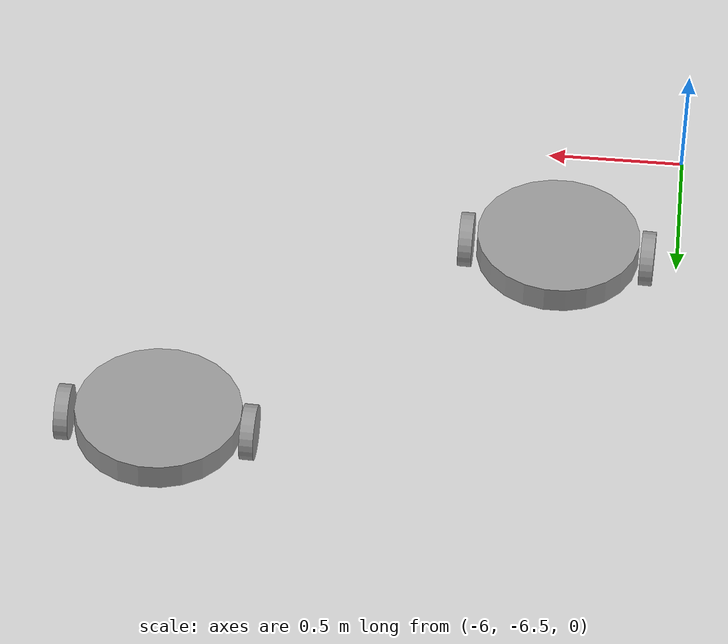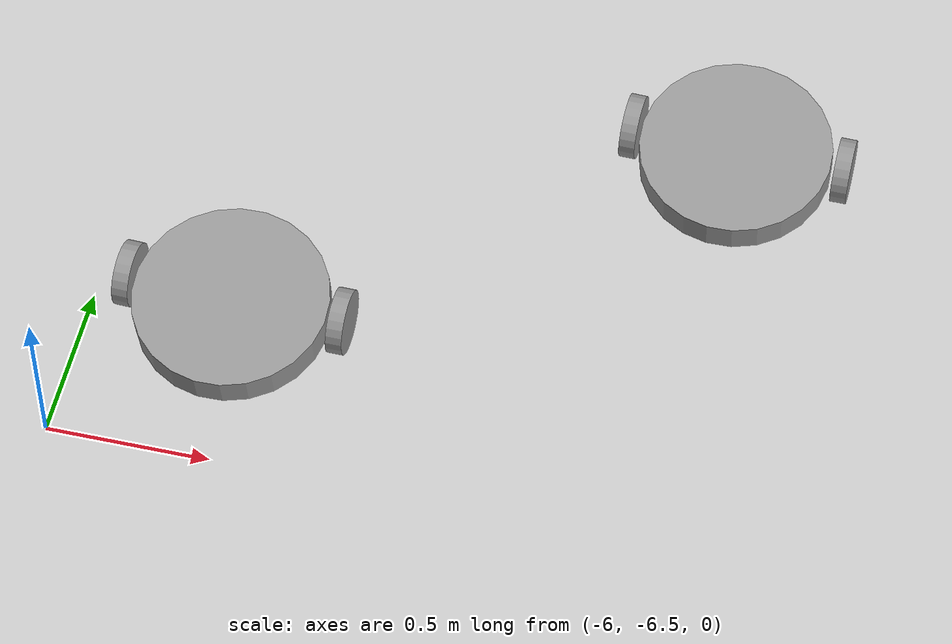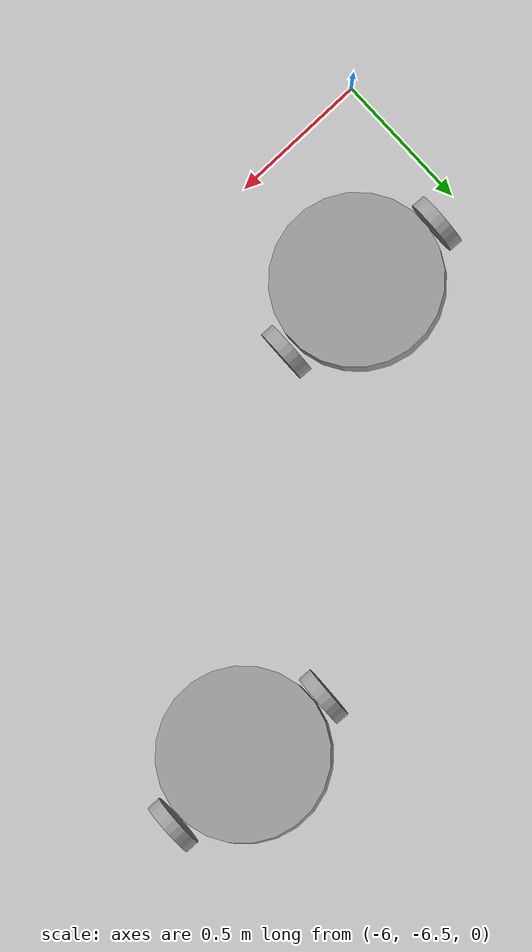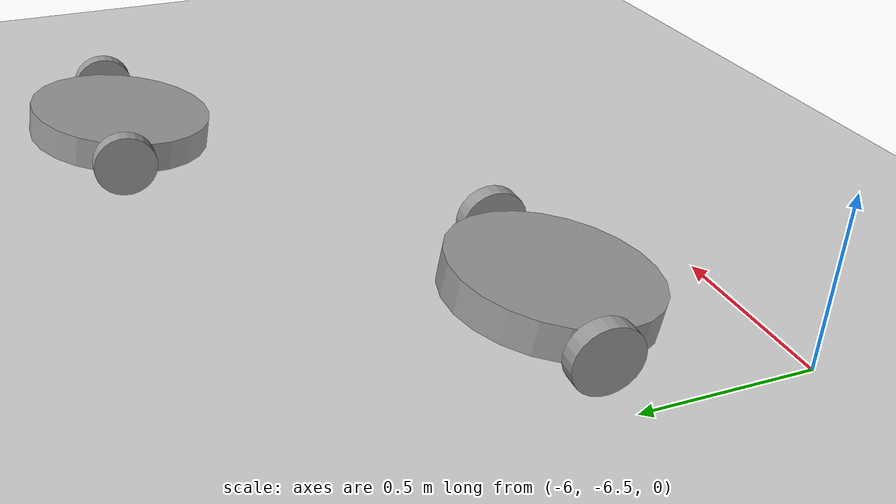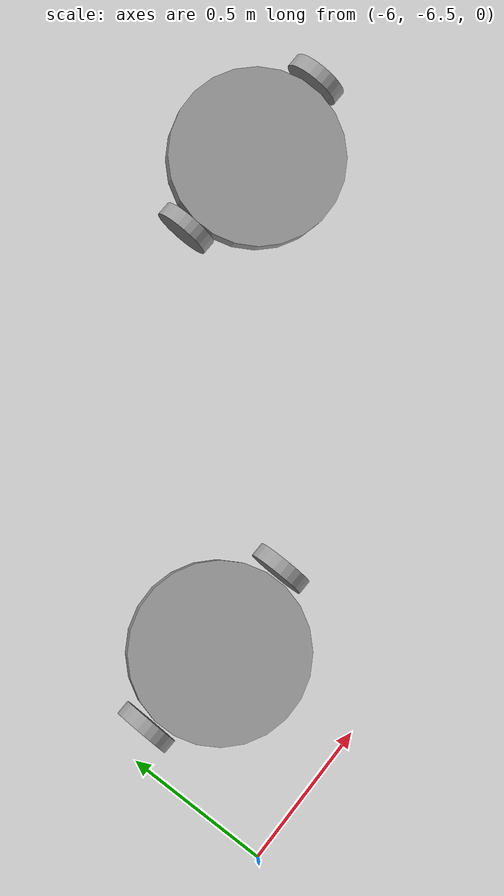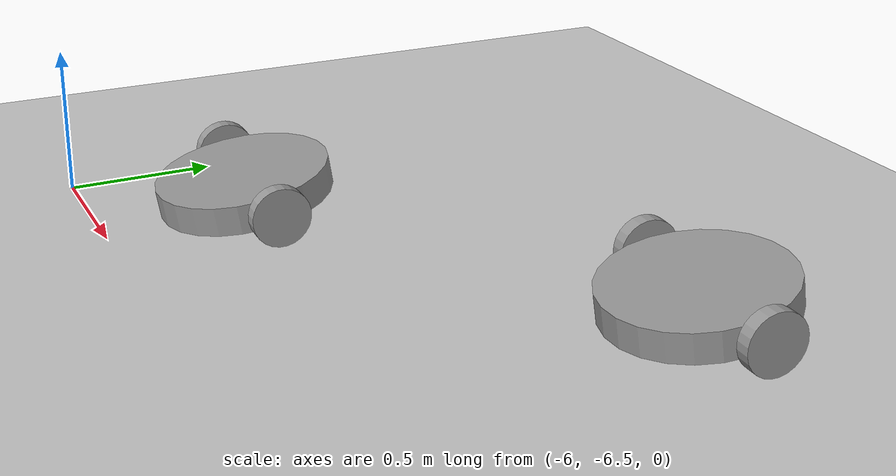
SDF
<sdf version="1.7">
 <world name="default">
  <model name="ground_plane">
   <static>1</static>
   <link name="link">
    <collision name="collision">
     <geometry><plane><normal>0 0 1</normal><size>100 100</size></plane></geometry>
     <surface>
      <contact><collide_bitmask>65535</collide_bitmask></contact>
      <friction><ode><mu>100</mu><mu2>50</mu2></ode></friction>
     </surface>
    </collision>
    <visual name="visual">
     <cast_shadows>0</cast_shadows>
     <geometry><plane><normal>0 0 1</normal><size>100 100</size></plane></geometry>
     <material>
      <script><uri>file://media/materials/scripts/gazebo.material</uri><name>Gazebo/Grey</name></script>
     </material>
    </visual>
   </link>
  </model>
  <model name="simple_robot">
   <link name="link_4_clone_clone">
    <inertial>
     <mass>1</mass>
     <inertia><ixx>0.145833</ixx><ixy>0</ixy><ixz>0</ixz><iyy>0.145833</iyy><iyz>0</iyz><izz>0.125</izz></inertia>
    </inertial>
    <pose>-0.050246 0.194522 0.073333 0 -0 0</pose>
    <visual name="visual">
     <geometry><cylinder><radius>0.3</radius><length>0.1</length></cylinder></geometry>
     <material>
      <lighting>1</lighting>
      <script><uri>file://media/materials/scripts/gazebo.material</uri><name>Gazebo/Grey</name></script>
      <shader type="pixel"><normal_map>__default__</normal_map></shader>
      <ambient>0.3 0.3 0.3 1</ambient>
      <diffuse>0.7 0.7 0.7 1</diffuse>
      <specular>0.01 0.01 0.01 1</specular>
      <emissive>0 0 0 1</emissive>
     </material>
    </visual>
    <collision name="collision">
     <geometry><cylinder><radius>0.3</radius><length>0.1</length></cylinder></geometry>
     <surface>
      <friction>
       <ode><mu>1</mu><mu2>1</mu2><fdir1>0 0 0</fdir1><slip1>0</slip1><slip2>0</slip2></ode>
       <torsional>
        <coefficient>1</coefficient>
        <patch_radius>0</patch_radius>
        <surface_radius>0</surface_radius>
        <use_patch_radius>1</use_patch_radius>
        <ode><slip>0</slip></ode>
       </torsional>
      </friction>
      <bounce><restitution_coefficient>0</restitution_coefficient><threshold>1e+06</threshold></bounce>
      <contact>
       <collide_without_contact>0</collide_without_contact>
       <collide_without_contact_bitmask>1</collide_without_contact_bitmask>
       <collide_bitmask>1</collide_bitmask>
       <ode>
        <soft_cfm>0</soft_cfm>
        <soft_erp>0.2</soft_erp>
        <kp>1e+13</kp>
        <kd>1</kd>
        <max_vel>0.01</max_vel>
        <min_depth>0</min_depth>
       </ode>
       <bullet>
        <split_impulse>1</split_impulse>
        <split_impulse_penetration_threshold>-0.01</split_impulse_penetration_threshold>
        <soft_cfm>0</soft_cfm>
        <soft_erp>0.2</soft_erp>
        <kp>1e+13</kp>
        <kd>1</kd>
       </bullet>
      </contact>
     </surface>
    </collision>
   </link>
   <link name="link_6_clone_0">
    <inertial>
     <mass>1</mass>
     <inertia><ixx>0.145833</ixx><ixy>0</ixy><ixz>0</ixz><iyy>0.145833</iyy><iyz>0</iyz><izz>0.125</izz></inertia>
    </inertial>
    <pose>0.284073 0.24205 0.073333 1.57236 0.016463 1.66526</pose>
    <visual name="visual">
     <geometry><cylinder><radius>0.1</radius><length>0.05</length></cylinder></geometry>
     <material>
      <lighting>1</lighting>
      <script><uri>file://media/materials/scripts/gazebo.material</uri><name>Gazebo/Grey</name></script>
      <shader type="pixel"><normal_map>__default__</normal_map></shader>
      <ambient>0.3 0.3 0.3 1</ambient>
      <diffuse>0.7 0.7 0.7 1</diffuse>
      <specular>0.01 0.01 0.01 1</specular>
      <emissive>0 0 0 1</emissive>
     </material>
    </visual>
    <collision name="collision">
     <geometry><cylinder><radius>0.1</radius><length>0.05</length></cylinder></geometry>
     <surface>
      <friction>
       <ode><mu>1</mu><mu2>1</mu2><fdir1>0 0 0</fdir1><slip1>0</slip1><slip2>0</slip2></ode>
       <torsional>
        <coefficient>1</coefficient>
        <patch_radius>0</patch_radius>
        <surface_radius>0</surface_radius>
        <use_patch_radius>1</use_patch_radius>
        <ode><slip>0</slip></ode>
       </torsional>
      </friction>
      <bounce><restitution_coefficient>0</restitution_coefficient><threshold>1e+06</threshold></bounce>
      <contact>
       <collide_without_contact>0</collide_without_contact>
       <collide_without_contact_bitmask>1</collide_without_contact_bitmask>
       <collide_bitmask>1</collide_bitmask>
       <ode>
        <soft_cfm>0</soft_cfm>
        <soft_erp>0.2</soft_erp>
        <kp>1e+13</kp>
        <kd>1</kd>
        <max_vel>0.01</max_vel>
        <min_depth>0</min_depth>
       </ode>
       <bullet>
        <split_impulse>1</split_impulse>
        <split_impulse_penetration_threshold>-0.01</split_impulse_penetration_threshold>
        <soft_cfm>0</soft_cfm>
        <soft_erp>0.2</soft_erp>
        <kp>1e+13</kp>
        <kd>1</kd>
       </bullet>
      </contact>
     </surface>
    </collision>
   </link>
   <link name="link_6_clone_1">
    <inertial>
     <mass>1</mass>
     <inertia><ixx>0.145833</ixx><ixy>0</ixy><ixz>0</ixz><iyy>0.145833</iyy><iyz>0</iyz><izz>0.125</izz></inertia>
    </inertial>
    <pose>-0.382874 0.194522 0.073333 1.57207 0.016487 1.64791</pose>
    <visual name="visual">
     <geometry><cylinder><radius>0.1</radius><length>0.05</length></cylinder></geometry>
     <material>
      <lighting>1</lighting>
      <script><uri>file://media/materials/scripts/gazebo.material</uri><name>Gazebo/Grey</name></script>
      <shader type="pixel"><normal_map>__default__</normal_map></shader>
      <ambient>0.3 0.3 0.3 1</ambient>
      <diffuse>0.7 0.7 0.7 1</diffuse>
      <specular>0.01 0.01 0.01 1</specular>
      <emissive>0 0 0 1</emissive>
     </material>
    </visual>
    <collision name="collision">
     <geometry><cylinder><radius>0.1</radius><length>0.05</length></cylinder></geometry>
     <surface>
      <friction>
       <ode><mu>1</mu><mu2>1</mu2><fdir1>0 0 0</fdir1><slip1>0</slip1><slip2>0</slip2></ode>
       <torsional>
        <coefficient>1</coefficient>
        <patch_radius>0</patch_radius>
        <surface_radius>0</surface_radius>
        <use_patch_radius>1</use_patch_radius>
        <ode><slip>0</slip></ode>
       </torsional>
      </friction>
      <bounce><restitution_coefficient>0</restitution_coefficient><threshold>1e+06</threshold></bounce>
      <contact>
       <collide_without_contact>0</collide_without_contact>
       <collide_without_contact_bitmask>1</collide_without_contact_bitmask>
       <collide_bitmask>1</collide_bitmask>
       <ode>
        <soft_cfm>0</soft_cfm>
        <soft_erp>0.2</soft_erp>
        <kp>1e+13</kp>
        <kd>1</kd>
        <max_vel>0.01</max_vel>
        <min_depth>0</min_depth>
       </ode>
       <bullet>
        <split_impulse>1</split_impulse>
        <split_impulse_penetration_threshold>-0.01</split_impulse_penetration_threshold>
        <soft_cfm>0</soft_cfm>
        <soft_erp>0.2</soft_erp>
        <kp>1e+13</kp>
        <kd>1</kd>
       </bullet>
      </contact>
     </surface>
    </collision>
   </link>
   <joint name="link_4_clone_clone_JOINT_8" type="revolute">
    <parent>link_4_clone_clone</parent>
    <child>link_6_clone_0</child>
    <axis>
     <xyz>1 0 0</xyz>
     <limit>
      <lower>-1.79769e+308</lower>
      <upper>1.79769e+308</upper>
      <effort>-1</effort>
      <velocity>-1</velocity>
     </limit>
     <dynamics>
      <spring_reference>0</spring_reference>
      <spring_stiffness>0</spring_stiffness>
      <damping>0</damping>
      <friction>0</friction>
     </dynamics>
    </axis>
    <physics>
     <ode><limit><cfm>0</cfm><erp>0.2</erp></limit><suspension><cfm>0</cfm><erp>0.2</erp></suspension></ode>
    </physics>
   </joint>
   <joint name="link_4_clone_clone_JOINT_9" type="revolute">
    <parent>link_4_clone_clone</parent>
    <child>link_6_clone_1</child>
    <axis>
     <xyz>1 0 0</xyz>
     <limit>
      <lower>-1.79769e+308</lower>
      <upper>1.79769e+308</upper>
      <effort>-1</effort>
      <velocity>-1</velocity>
     </limit>
     <dynamics>
      <spring_reference>0</spring_reference>
      <spring_stiffness>0</spring_stiffness>
      <damping>0</damping>
      <friction>0</friction>
     </dynamics>
    </axis>
    <physics>
     <ode><limit><cfm>0</cfm><erp>0.2</erp></limit><suspension><cfm>0</cfm><erp>0.2</erp></suspension></ode>
    </physics>
   </joint>
   <static>0</static>
   <pose>-4.15909 -5.28207 -0.007032 0.15664 0.01111 -0.117387</pose>
  </model>
  <model name="simple_robot_0">
   <link name="link_4_clone_clone">
    <inertial>
     <mass>1</mass>
     <inertia><ixx>0.145833</ixx><ixy>0</ixy><ixz>0</ixz><iyy>0.145833</iyy><iyz>0</iyz><izz>0.125</izz></inertia>
    </inertial>
    <pose>-0.050246 0.194522 0.073333 0 -0 0</pose>
    <visual name="visual">
     <geometry><cylinder><radius>0.3</radius><length>0.1</length></cylinder></geometry>
     <material>
      <lighting>1</lighting>
      <script><uri>file://media/materials/scripts/gazebo.material</uri><name>Gazebo/Grey</name></script>
      <shader type="pixel"><normal_map>__default__</normal_map></shader>
      <ambient>0.3 0.3 0.3 1</ambient>
      <diffuse>0.7 0.7 0.7 1</diffuse>
      <specular>0.01 0.01 0.01 1</specular>
      <emissive>0 0 0 1</emissive>
     </material>
    </visual>
    <collision name="collision">
     <geometry><cylinder><radius>0.3</radius><length>0.1</length></cylinder></geometry>
     <surface>
      <friction>
       <ode><mu>1</mu><mu2>1</mu2><fdir1>0 0 0</fdir1><slip1>0</slip1><slip2>0</slip2></ode>
       <torsional>
        <coefficient>1</coefficient>
        <patch_radius>0</patch_radius>
        <surface_radius>0</surface_radius>
        <use_patch_radius>1</use_patch_radius>
        <ode><slip>0</slip></ode>
       </torsional>
      </friction>
      <bounce><restitution_coefficient>0</restitution_coefficient><threshold>1e+06</threshold></bounce>
      <contact>
       <collide_without_contact>0</collide_without_contact>
       <collide_without_contact_bitmask>1</collide_without_contact_bitmask>
       <collide_bitmask>1</collide_bitmask>
       <ode>
        <soft_cfm>0</soft_cfm>
        <soft_erp>0.2</soft_erp>
        <kp>1e+13</kp>
        <kd>1</kd>
        <max_vel>0.01</max_vel>
        <min_depth>0</min_depth>
       </ode>
       <bullet>
        <split_impulse>1</split_impulse>
        <split_impulse_penetration_threshold>-0.01</split_impulse_penetration_threshold>
        <soft_cfm>0</soft_cfm>
        <soft_erp>0.2</soft_erp>
        <kp>1e+13</kp>
        <kd>1</kd>
       </bullet>
      </contact>
     </surface>
    </collision>
   </link>
   <link name="link_6_clone_0">
    <inertial>
     <mass>1</mass>
     <inertia><ixx>0.145833</ixx><ixy>0</ixy><ixz>0</ixz><iyy>0.145833</iyy><iyz>0</iyz><izz>0.125</izz></inertia>
    </inertial>
    <pose>0.284073 0.24205 0.073333 1.57236 0.016463 1.66526</pose>
    <visual name="visual">
     <geometry><cylinder><radius>0.1</radius><length>0.05</length></cylinder></geometry>
     <material>
      <lighting>1</lighting>
      <script><uri>file://media/materials/scripts/gazebo.material</uri><name>Gazebo/Grey</name></script>
      <shader type="pixel"><normal_map>__default__</normal_map></shader>
      <ambient>0.3 0.3 0.3 1</ambient>
      <diffuse>0.7 0.7 0.7 1</diffuse>
      <specular>0.01 0.01 0.01 1</specular>
      <emissive>0 0 0 1</emissive>
     </material>
    </visual>
    <collision name="collision">
     <geometry><cylinder><radius>0.1</radius><length>0.05</length></cylinder></geometry>
     <surface>
      <friction>
       <ode><mu>1</mu><mu2>1</mu2><fdir1>0 0 0</fdir1><slip1>0</slip1><slip2>0</slip2></ode>
       <torsional>
        <coefficient>1</coefficient>
        <patch_radius>0</patch_radius>
        <surface_radius>0</surface_radius>
        <use_patch_radius>1</use_patch_radius>
        <ode><slip>0</slip></ode>
       </torsional>
      </friction>
      <bounce><restitution_coefficient>0</restitution_coefficient><threshold>1e+06</threshold></bounce>
      <contact>
       <collide_without_contact>0</collide_without_contact>
       <collide_without_contact_bitmask>1</collide_without_contact_bitmask>
       <collide_bitmask>1</collide_bitmask>
       <ode>
        <soft_cfm>0</soft_cfm>
        <soft_erp>0.2</soft_erp>
        <kp>1e+13</kp>
        <kd>1</kd>
        <max_vel>0.01</max_vel>
        <min_depth>0</min_depth>
       </ode>
       <bullet>
        <split_impulse>1</split_impulse>
        <split_impulse_penetration_threshold>-0.01</split_impulse_penetration_threshold>
        <soft_cfm>0</soft_cfm>
        <soft_erp>0.2</soft_erp>
        <kp>1e+13</kp>
        <kd>1</kd>
       </bullet>
      </contact>
     </surface>
    </collision>
   </link>
   <link name="link_6_clone_1">
    <inertial>
     <mass>1</mass>
     <inertia><ixx>0.145833</ixx><ixy>0</ixy><ixz>0</ixz><iyy>0.145833</iyy><iyz>0</iyz><izz>0.125</izz></inertia>
    </inertial>
    <pose>-0.382874 0.194522 0.073333 1.57207 0.016487 1.64791</pose>
    <visual name="visual">
     <geometry><cylinder><radius>0.1</radius><length>0.05</length></cylinder></geometry>
     <material>
      <lighting>1</lighting>
      <script><uri>file://media/materials/scripts/gazebo.material</uri><name>Gazebo/Grey</name></script>
      <shader type="pixel"><normal_map>__default__</normal_map></shader>
      <ambient>0.3 0.3 0.3 1</ambient>
      <diffuse>0.7 0.7 0.7 1</diffuse>
      <specular>0.01 0.01 0.01 1</specular>
      <emissive>0 0 0 1</emissive>
     </material>
    </visual>
    <collision name="collision">
     <geometry><cylinder><radius>0.1</radius><length>0.05</length></cylinder></geometry>
     <surface>
      <friction>
       <ode><mu>1</mu><mu2>1</mu2><fdir1>0 0 0</fdir1><slip1>0</slip1><slip2>0</slip2></ode>
       <torsional>
        <coefficient>1</coefficient>
        <patch_radius>0</patch_radius>
        <surface_radius>0</surface_radius>
        <use_patch_radius>1</use_patch_radius>
        <ode><slip>0</slip></ode>
       </torsional>
      </friction>
      <bounce><restitution_coefficient>0</restitution_coefficient><threshold>1e+06</threshold></bounce>
      <contact>
       <collide_without_contact>0</collide_without_contact>
       <collide_without_contact_bitmask>1</collide_without_contact_bitmask>
       <collide_bitmask>1</collide_bitmask>
       <ode>
        <soft_cfm>0</soft_cfm>
        <soft_erp>0.2</soft_erp>
        <kp>1e+13</kp>
        <kd>1</kd>
        <max_vel>0.01</max_vel>
        <min_depth>0</min_depth>
       </ode>
       <bullet>
        <split_impulse>1</split_impulse>
        <split_impulse_penetration_threshold>-0.01</split_impulse_penetration_threshold>
        <soft_cfm>0</soft_cfm>
        <soft_erp>0.2</soft_erp>
        <kp>1e+13</kp>
        <kd>1</kd>
       </bullet>
      </contact>
     </surface>
    </collision>
   </link>
   <joint name="link_4_clone_clone_JOINT_8" type="revolute">
    <parent>link_4_clone_clone</parent>
    <child>link_6_clone_0</child>
    <axis>
     <xyz>1 0 0</xyz>
     <limit>
      <lower>-1.79769e+308</lower>
      <upper>1.79769e+308</upper>
      <effort>-1</effort>
      <velocity>-1</velocity>
     </limit>
     <dynamics>
      <spring_reference>0</spring_reference>
      <spring_stiffness>0</spring_stiffness>
      <damping>0</damping>
      <friction>0</friction>
     </dynamics>
    </axis>
    <physics>
     <ode><limit><cfm>0</cfm><erp>0.2</erp></limit><suspension><cfm>0</cfm><erp>0.2</erp></suspension></ode>
    </physics>
   </joint>
   <joint name="link_4_clone_clone_JOINT_9" type="revolute">
    <parent>link_4_clone_clone</parent>
    <child>link_6_clone_1</child>
    <axis>
     <xyz>1 0 0</xyz>
     <limit>
      <lower>-1.79769e+308</lower>
      <upper>1.79769e+308</upper>
      <effort>-1</effort>
      <velocity>-1</velocity>
     </limit>
     <dynamics>
      <spring_reference>0</spring_reference>
      <spring_stiffness>0</spring_stiffness>
      <damping>0</damping>
      <friction>0</friction>
     </dynamics>
    </axis>
    <physics>
     <ode><limit><cfm>0</cfm><erp>0.2</erp></limit><suspension><cfm>0</cfm><erp>0.2</erp></suspension></ode>
    </physics>
   </joint>
   <static>0</static>
   <pose>-5.53224 -6.18738 -0.007032 0.156639 0.011123 -0.117358</pose>
  </model>
 </world>
</sdf>
